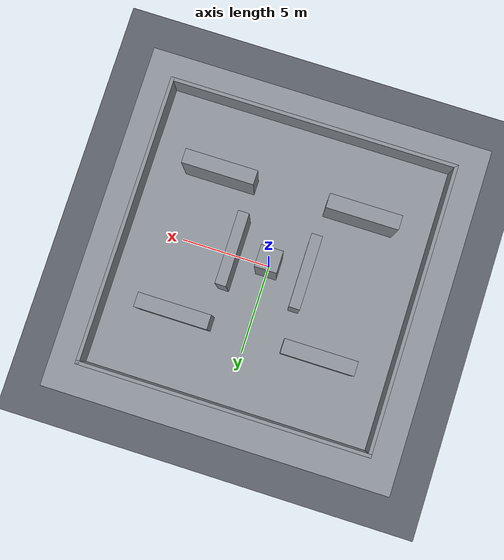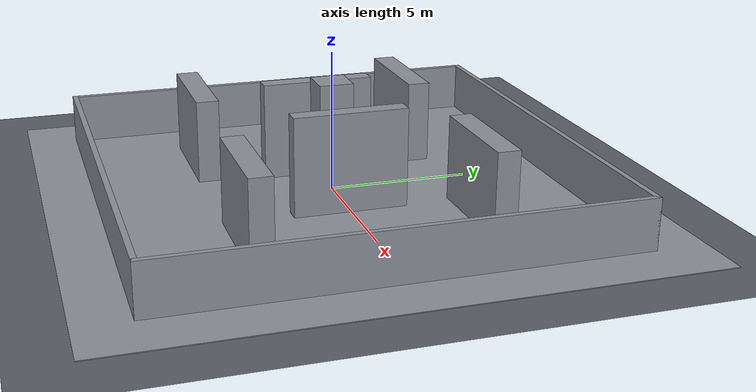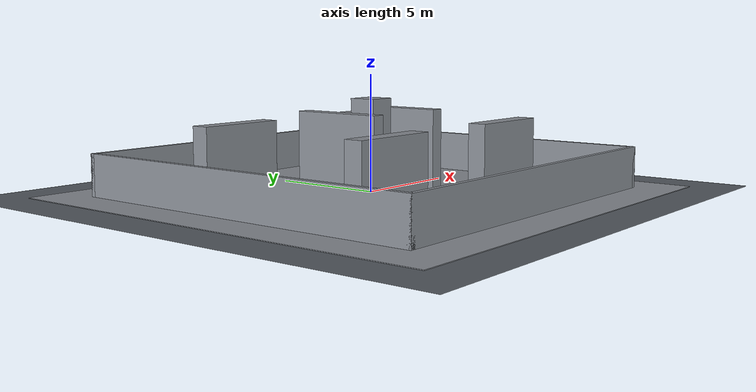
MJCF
<!-- Generated by robot_lab_maps/tools/gen_mjcf_worlds.py from
     maps/nav_sensor_degraded/worlds/nav_sensor_degraded.world - do not edit by hand. -->
<mujoco model="nav_sensor_degraded">
  <option gravity="0 0 -9.81" />
  <compiler angle="radian" />
  <worldbody>
    <geom type="plane" size="100 100 0.1" contype="0" conaffinity="0" rgba="0.35 0.37 0.4 1" />
    <geom pos="0 0 -0.05" quat="1 0 0 0" rgba="0.55 0.57 0.6 1" type="box" size="10 10 0.05" />
    <geom pos="0 -8.1 0.9" quat="1 0 0 0" rgba="0.55 0.57 0.6 1" type="box" size="8.2 0.1 0.9" />
    <geom pos="0 8.1 0.9" quat="1 0 0 0" rgba="0.55 0.57 0.6 1" type="box" size="8.2 0.1 0.9" />
    <geom pos="-8.1 0 0.9" quat="1 0 0 0" rgba="0.55 0.57 0.6 1" type="box" size="0.1 8.2 0.9" />
    <geom pos="8.1 0 0.9" quat="1 0 0 0" rgba="0.55 0.57 0.6 1" type="box" size="0.1 8.2 0.9" />
    <geom pos="-4 -4 1.5" quat="1 0 0 0" rgba="0.55 0.57 0.6 1" type="box" size="2 0.4 1.5" />
    <geom pos="4 -4 1.5" quat="1 0 0 0" rgba="0.55 0.57 0.6 1" type="box" size="2 0.4 1.5" />
    <geom pos="-4 4 1.5" quat="1 0 0 0" rgba="0.55 0.57 0.6 1" type="box" size="2 0.4 1.5" />
    <geom pos="4 4 1.5" quat="1 0 0 0" rgba="0.55 0.57 0.6 1" type="box" size="2 0.4 1.5" />
    <geom pos="0 0 2" quat="1 0 0 0" rgba="0.55 0.57 0.6 1" type="box" size="0.6 0.6 2" />
    <geom pos="-2 0 1.75" quat="1 0 0 0" rgba="0.55 0.57 0.6 1" type="box" size="0.3 2 1.75" />
    <geom pos="2 0 1.75" quat="1 0 0 0" rgba="0.55 0.57 0.6 1" type="box" size="0.3 2 1.75" />
    <light diffuse="0.8 0.8 0.8" pos="0 0 10" dir="0 0 -1" castshadow="true" />
    <light diffuse="0.3 0.3 0.3" pos="0 -6 6" dir="0 1 -1" />
  </worldbody>
</mujoco>
